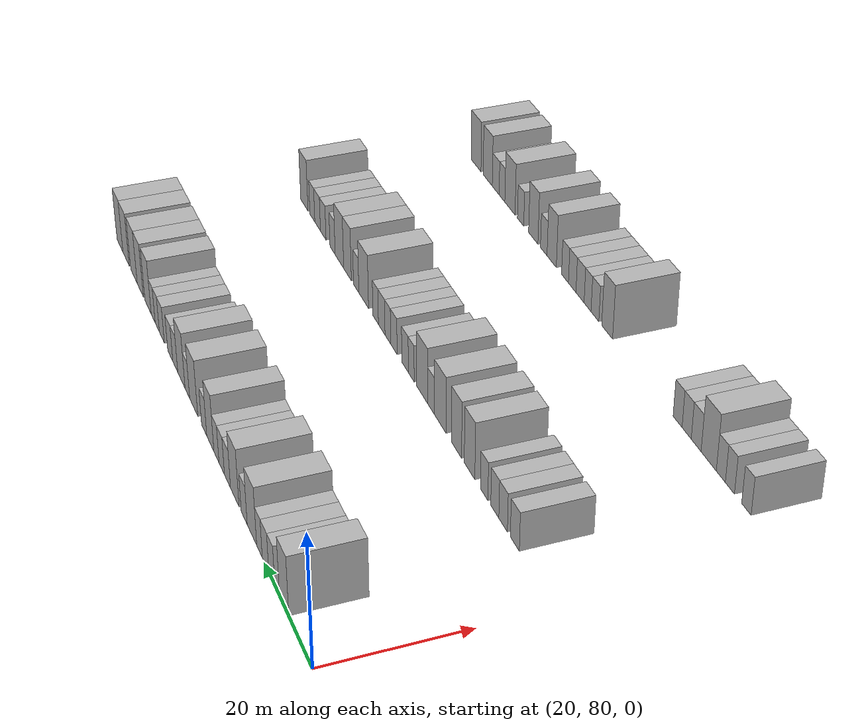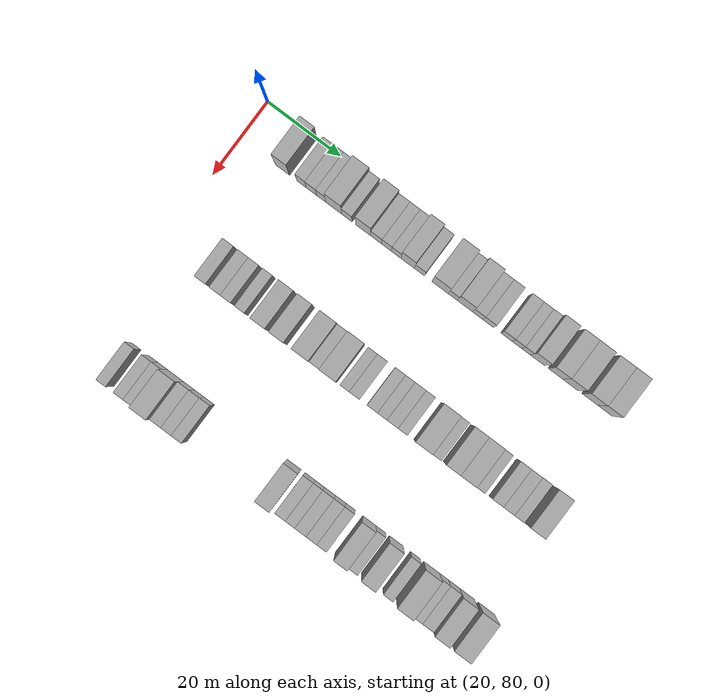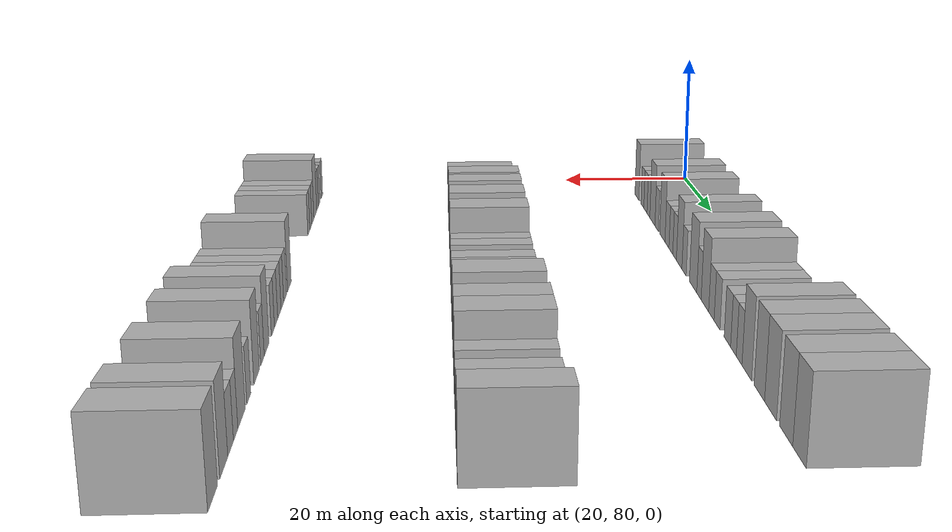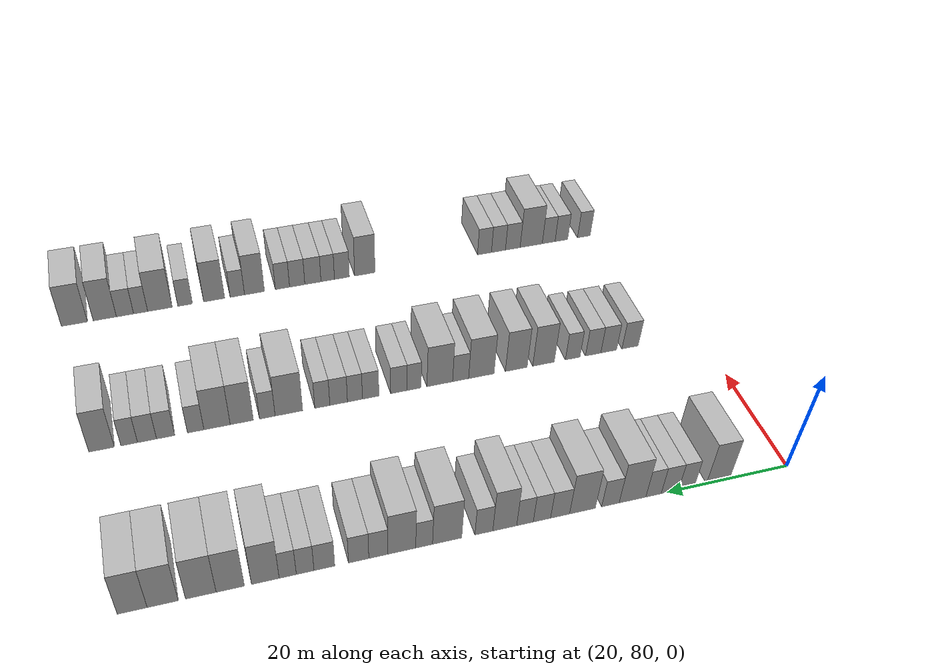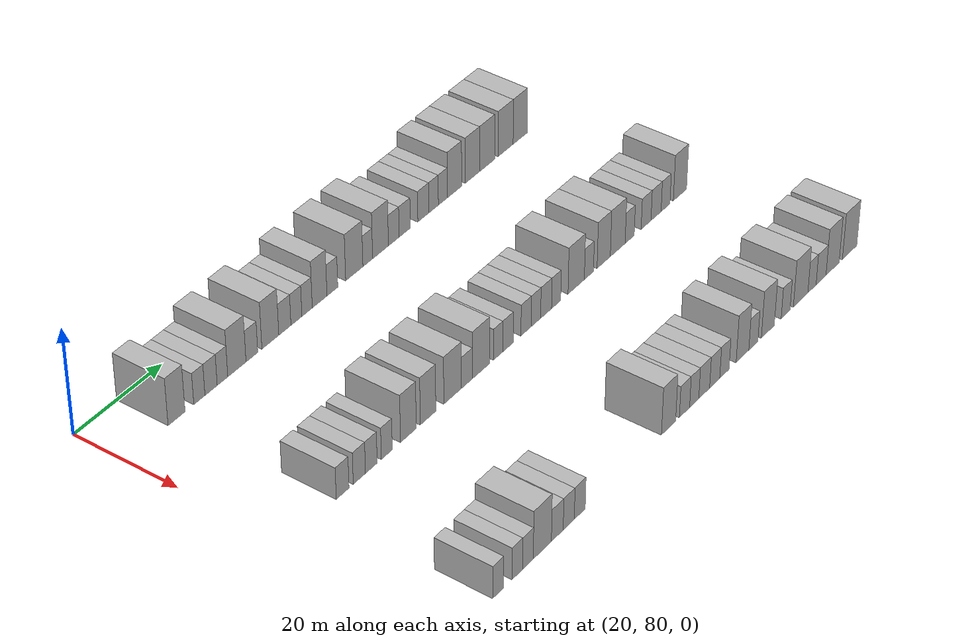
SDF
<sdf version="1.6">
 <world name="default">
  <model name="building_97">
   <static>1</static>
   <pose>25.0000 91.5908 0 0.000000 0.000000 0.000000</pose>
   <link name="link">
    <pose>0 0 4.50 0 0 0</pose>
    <collision name="collision"><geometry><box><size>10.0000 3.8743 9.0000</size></box></geometry></collision>
    <visual name="visual">
     <cast_shadows>0</cast_shadows>
     <geometry><box><size>10.0000 3.8743 9.0000</size></box></geometry>
     <material>
      <script>
       <uri>model://HANNAS_wall/materials/scripts</uri>
       <uri>model://HANNAS_wall/materials/textures</uri>
       <name>vrc/HANNAS_wall</name>
      </script>
     </material>
    </visual>
   </link>
  </model>
  <model name="building_98">
   <static>1</static>
   <pose>25.0000 96.8224 0 0.000000 0.000000 0.000000</pose>
   <link name="link">
    <pose>0 0 3.00 0 0 0</pose>
    <collision name="collision"><geometry><box><size>10.0000 2.5889 6.0000</size></box></geometry></collision>
    <visual name="visual">
     <cast_shadows>0</cast_shadows>
     <geometry><box><size>10.0000 2.5889 6.0000</size></box></geometry>
     <material>
      <script>
       <uri>model://HANNAS_wall/materials/scripts</uri>
       <uri>model://HANNAS_wall/materials/textures</uri>
       <name>vrc/HANNAS_wall</name>
      </script>
     </material>
    </visual>
   </link>
  </model>
  <model name="building_99">
   <static>1</static>
   <pose>25.0000 99.5422 0 0.000000 0.000000 0.000000</pose>
   <link name="link">
    <pose>0 0 3.00 0 0 0</pose>
    <collision name="collision"><geometry><box><size>10.0000 2.8506 6.0000</size></box></geometry></collision>
    <visual name="visual">
     <cast_shadows>0</cast_shadows>
     <geometry><box><size>10.0000 2.8506 6.0000</size></box></geometry>
     <material>
      <script>
       <uri>model://HANNAS_wall/materials/scripts</uri>
       <uri>model://HANNAS_wall/materials/textures</uri>
       <name>vrc/HANNAS_wall</name>
      </script>
     </material>
    </visual>
   </link>
  </model>
  <model name="building_100">
   <static>1</static>
   <pose>25.0000 102.2093 0 0.000000 0.000000 0.000000</pose>
   <link name="link">
    <pose>0 0 3.00 0 0 0</pose>
    <collision name="collision"><geometry><box><size>10.0000 2.4835 6.0000</size></box></geometry></collision>
    <visual name="visual">
     <cast_shadows>0</cast_shadows>
     <geometry><box><size>10.0000 2.4835 6.0000</size></box></geometry>
     <material>
      <script>
       <uri>model://HANNAS_wall/materials/scripts</uri>
       <uri>model://HANNAS_wall/materials/textures</uri>
       <name>vrc/HANNAS_wall</name>
      </script>
     </material>
    </visual>
   </link>
  </model>
  <model name="building_101">
   <static>1</static>
   <pose>25.0000 105.6084 0 0.000000 0.000000 0.000000</pose>
   <link name="link">
    <pose>0 0 4.50 0 0 0</pose>
    <collision name="collision"><geometry><box><size>10.0000 4.3146 9.0000</size></box></geometry></collision>
    <visual name="visual">
     <cast_shadows>0</cast_shadows>
     <geometry><box><size>10.0000 4.3146 9.0000</size></box></geometry>
     <material>
      <script>
       <uri>model://HANNAS_wall/materials/scripts</uri>
       <uri>model://HANNAS_wall/materials/textures</uri>
       <name>vrc/HANNAS_wall</name>
      </script>
     </material>
    </visual>
   </link>
  </model>
  <model name="building_102">
   <static>1</static>
   <pose>25.0000 109.1685 0 0.000000 0.000000 0.000000</pose>
   <link name="link">
    <pose>0 0 3.00 0 0 0</pose>
    <collision name="collision"><geometry><box><size>10.0000 2.8057 6.0000</size></box></geometry></collision>
    <visual name="visual">
     <cast_shadows>0</cast_shadows>
     <geometry><box><size>10.0000 2.8057 6.0000</size></box></geometry>
     <material>
      <script>
       <uri>model://HANNAS_wall/materials/scripts</uri>
       <uri>model://HANNAS_wall/materials/textures</uri>
       <name>vrc/HANNAS_wall</name>
      </script>
     </material>
    </visual>
   </link>
  </model>
  <model name="building_103">
   <static>1</static>
   <pose>25.0000 113.6145 0 0.000000 0.000000 0.000000</pose>
   <link name="link">
    <pose>0 0 4.50 0 0 0</pose>
    <collision name="collision"><geometry><box><size>10.0000 4.0864 9.0000</size></box></geometry></collision>
    <visual name="visual">
     <cast_shadows>0</cast_shadows>
     <geometry><box><size>10.0000 4.0864 9.0000</size></box></geometry>
     <material>
      <script>
       <uri>model://HANNAS_wall/materials/scripts</uri>
       <uri>model://HANNAS_wall/materials/textures</uri>
       <name>vrc/HANNAS_wall</name>
      </script>
     </material>
    </visual>
   </link>
  </model>
  <model name="building_104">
   <static>1</static>
   <pose>25.0000 117.1456 0 0.000000 0.000000 0.000000</pose>
   <link name="link">
    <pose>0 0 3.00 0 0 0</pose>
    <collision name="collision"><geometry><box><size>10.0000 2.9758 6.0000</size></box></geometry></collision>
    <visual name="visual">
     <cast_shadows>0</cast_shadows>
     <geometry><box><size>10.0000 2.9758 6.0000</size></box></geometry>
     <material>
      <script>
       <uri>model://HANNAS_wall/materials/scripts</uri>
       <uri>model://HANNAS_wall/materials/textures</uri>
       <name>vrc/HANNAS_wall</name>
      </script>
     </material>
    </visual>
   </link>
  </model>
  <model name="building_105">
   <static>1</static>
   <pose>25.0000 119.9803 0 0.000000 0.000000 0.000000</pose>
   <link name="link">
    <pose>0 0 3.00 0 0 0</pose>
    <collision name="collision"><geometry><box><size>10.0000 2.6935 6.0000</size></box></geometry></collision>
    <visual name="visual">
     <cast_shadows>0</cast_shadows>
     <geometry><box><size>10.0000 2.6935 6.0000</size></box></geometry>
     <material>
      <script>
       <uri>model://HANNAS_wall/materials/scripts</uri>
       <uri>model://HANNAS_wall/materials/textures</uri>
       <name>vrc/HANNAS_wall</name>
      </script>
     </material>
    </visual>
   </link>
  </model>
  <model name="building_106">
   <static>1</static>
   <pose>25.0000 122.6122 0 0.000000 0.000000 0.000000</pose>
   <link name="link">
    <pose>0 0 3.00 0 0 0</pose>
    <collision name="collision"><geometry><box><size>10.0000 2.5702 6.0000</size></box></geometry></collision>
    <visual name="visual">
     <cast_shadows>0</cast_shadows>
     <geometry><box><size>10.0000 2.5702 6.0000</size></box></geometry>
     <material>
      <script>
       <uri>model://HANNAS_wall/materials/scripts</uri>
       <uri>model://HANNAS_wall/materials/textures</uri>
       <name>vrc/HANNAS_wall</name>
      </script>
     </material>
    </visual>
   </link>
  </model>
  <model name="building_107">
   <static>1</static>
   <pose>25.0000 125.7366 0 0.000000 0.000000 0.000000</pose>
   <link name="link">
    <pose>0 0 4.50 0 0 0</pose>
    <collision name="collision"><geometry><box><size>10.0000 3.6786 9.0000</size></box></geometry></collision>
    <visual name="visual">
     <cast_shadows>0</cast_shadows>
     <geometry><box><size>10.0000 3.6786 9.0000</size></box></geometry>
     <material>
      <script>
       <uri>model://HANNAS_wall/materials/scripts</uri>
       <uri>model://HANNAS_wall/materials/textures</uri>
       <name>vrc/HANNAS_wall</name>
      </script>
     </material>
    </visual>
   </link>
  </model>
  <model name="building_108">
   <static>1</static>
   <pose>25.0000 128.9417 0 0.000000 0.000000 0.000000</pose>
   <link name="link">
    <pose>0 0 3.00 0 0 0</pose>
    <collision name="collision"><geometry><box><size>10.0000 2.7316 6.0000</size></box></geometry></collision>
    <visual name="visual">
     <cast_shadows>0</cast_shadows>
     <geometry><box><size>10.0000 2.7316 6.0000</size></box></geometry>
     <material>
      <script>
       <uri>model://HANNAS_wall/materials/scripts</uri>
       <uri>model://HANNAS_wall/materials/textures</uri>
       <name>vrc/HANNAS_wall</name>
      </script>
     </material>
    </visual>
   </link>
  </model>
  <model name="building_109">
   <static>1</static>
   <pose>25.0000 134.5075 0 0.000000 0.000000 0.000000</pose>
   <link name="link">
    <pose>0 0 4.50 0 0 0</pose>
    <collision name="collision"><geometry><box><size>10.0000 4.4000 9.0000</size></box></geometry></collision>
    <visual name="visual">
     <cast_shadows>0</cast_shadows>
     <geometry><box><size>10.0000 4.4000 9.0000</size></box></geometry>
     <material>
      <script>
       <uri>model://HANNAS_wall/materials/scripts</uri>
       <uri>model://HANNAS_wall/materials/textures</uri>
       <name>vrc/HANNAS_wall</name>
      </script>
     </material>
    </visual>
   </link>
  </model>
  <model name="building_110">
   <static>1</static>
   <pose>25.0000 137.9633 0 0.000000 0.000000 0.000000</pose>
   <link name="link">
    <pose>0 0 3.00 0 0 0</pose>
    <collision name="collision"><geometry><box><size>10.0000 2.5115 6.0000</size></box></geometry></collision>
    <visual name="visual">
     <cast_shadows>0</cast_shadows>
     <geometry><box><size>10.0000 2.5115 6.0000</size></box></geometry>
     <material>
      <script>
       <uri>model://HANNAS_wall/materials/scripts</uri>
       <uri>model://HANNAS_wall/materials/textures</uri>
       <name>vrc/HANNAS_wall</name>
      </script>
     </material>
    </visual>
   </link>
  </model>
  <model name="building_111">
   <static>1</static>
   <pose>25.0000 141.2764 0 0.000000 0.000000 0.000000</pose>
   <link name="link">
    <pose>0 0 4.50 0 0 0</pose>
    <collision name="collision"><geometry><box><size>10.0000 4.1148 9.0000</size></box></geometry></collision>
    <visual name="visual">
     <cast_shadows>0</cast_shadows>
     <geometry><box><size>10.0000 4.1148 9.0000</size></box></geometry>
     <material>
      <script>
       <uri>model://HANNAS_wall/materials/scripts</uri>
       <uri>model://HANNAS_wall/materials/textures</uri>
       <name>vrc/HANNAS_wall</name>
      </script>
     </material>
    </visual>
   </link>
  </model>
  <model name="building_112">
   <static>1</static>
   <pose>25.0000 144.7421 0 0.000000 0.000000 0.000000</pose>
   <link name="link">
    <pose>0 0 3.00 0 0 0</pose>
    <collision name="collision"><geometry><box><size>10.0000 2.8166 6.0000</size></box></geometry></collision>
    <visual name="visual">
     <cast_shadows>0</cast_shadows>
     <geometry><box><size>10.0000 2.8166 6.0000</size></box></geometry>
     <material>
      <script>
       <uri>model://HANNAS_wall/materials/scripts</uri>
       <uri>model://HANNAS_wall/materials/textures</uri>
       <name>vrc/HANNAS_wall</name>
      </script>
     </material>
    </visual>
   </link>
  </model>
  <model name="building_113">
   <static>1</static>
   <pose>25.0000 147.6312 0 0.000000 0.000000 0.000000</pose>
   <link name="link">
    <pose>0 0 3.00 0 0 0</pose>
    <collision name="collision"><geometry><box><size>10.0000 2.9615 6.0000</size></box></geometry></collision>
    <visual name="visual">
     <cast_shadows>0</cast_shadows>
     <geometry><box><size>10.0000 2.9615 6.0000</size></box></geometry>
     <material>
      <script>
       <uri>model://HANNAS_wall/materials/scripts</uri>
       <uri>model://HANNAS_wall/materials/textures</uri>
       <name>vrc/HANNAS_wall</name>
      </script>
     </material>
    </visual>
   </link>
  </model>
  <model name="building_114">
   <static>1</static>
   <pose>25.0000 152.6046 0 0.000000 0.000000 0.000000</pose>
   <link name="link">
    <pose>0 0 3.00 0 0 0</pose>
    <collision name="collision"><geometry><box><size>10.0000 2.9853 6.0000</size></box></geometry></collision>
    <visual name="visual">
     <cast_shadows>0</cast_shadows>
     <geometry><box><size>10.0000 2.9853 6.0000</size></box></geometry>
     <material>
      <script>
       <uri>model://HANNAS_wall/materials/scripts</uri>
       <uri>model://HANNAS_wall/materials/textures</uri>
       <name>vrc/HANNAS_wall</name>
      </script>
     </material>
    </visual>
   </link>
  </model>
  <model name="building_115">
   <static>1</static>
   <pose>25.0000 155.3676 0 0.000000 0.000000 0.000000</pose>
   <link name="link">
    <pose>0 0 3.00 0 0 0</pose>
    <collision name="collision"><geometry><box><size>10.0000 2.5406 6.0000</size></box></geometry></collision>
    <visual name="visual">
     <cast_shadows>0</cast_shadows>
     <geometry><box><size>10.0000 2.5406 6.0000</size></box></geometry>
     <material>
      <script>
       <uri>model://HANNAS_wall/materials/scripts</uri>
       <uri>model://HANNAS_wall/materials/textures</uri>
       <name>vrc/HANNAS_wall</name>
      </script>
     </material>
    </visual>
   </link>
  </model>
  <model name="building_116">
   <static>1</static>
   <pose>25.0000 157.8610 0 0.000000 0.000000 0.000000</pose>
   <link name="link">
    <pose>0 0 3.00 0 0 0</pose>
    <collision name="collision"><geometry><box><size>10.0000 2.4461 6.0000</size></box></geometry></collision>
    <visual name="visual">
     <cast_shadows>0</cast_shadows>
     <geometry><box><size>10.0000 2.4461 6.0000</size></box></geometry>
     <material>
      <script>
       <uri>model://HANNAS_wall/materials/scripts</uri>
       <uri>model://HANNAS_wall/materials/textures</uri>
       <name>vrc/HANNAS_wall</name>
      </script>
     </material>
    </visual>
   </link>
  </model>
  <model name="building_117">
   <static>1</static>
   <pose>25.0000 161.0375 0 0.000000 0.000000 0.000000</pose>
   <link name="link">
    <pose>0 0 4.50 0 0 0</pose>
    <collision name="collision"><geometry><box><size>10.0000 3.9070 9.0000</size></box></geometry></collision>
    <visual name="visual">
     <cast_shadows>0</cast_shadows>
     <geometry><box><size>10.0000 3.9070 9.0000</size></box></geometry>
     <material>
      <script>
       <uri>model://HANNAS_wall/materials/scripts</uri>
       <uri>model://HANNAS_wall/materials/textures</uri>
       <name>vrc/HANNAS_wall</name>
      </script>
     </material>
    </visual>
   </link>
  </model>
  <model name="building_118">
   <static>1</static>
   <pose>25.0000 165.9653 0 0.000000 0.000000 0.000000</pose>
   <link name="link">
    <pose>0 0 4.50 0 0 0</pose>
    <collision name="collision"><geometry><box><size>10.0000 3.9487 9.0000</size></box></geometry></collision>
    <visual name="visual">
     <cast_shadows>0</cast_shadows>
     <geometry><box><size>10.0000 3.9487 9.0000</size></box></geometry>
     <material>
      <script>
       <uri>model://HANNAS_wall/materials/scripts</uri>
       <uri>model://HANNAS_wall/materials/textures</uri>
       <name>vrc/HANNAS_wall</name>
      </script>
     </material>
    </visual>
   </link>
  </model>
  <model name="building_119">
   <static>1</static>
   <pose>25.0000 170.0561 0 0.000000 0.000000 0.000000</pose>
   <link name="link">
    <pose>0 0 4.50 0 0 0</pose>
    <collision name="collision"><geometry><box><size>10.0000 4.2329 9.0000</size></box></geometry></collision>
    <visual name="visual">
     <cast_shadows>0</cast_shadows>
     <geometry><box><size>10.0000 4.2329 9.0000</size></box></geometry>
     <material>
      <script>
       <uri>model://HANNAS_wall/materials/scripts</uri>
       <uri>model://HANNAS_wall/materials/textures</uri>
       <name>vrc/HANNAS_wall</name>
      </script>
     </material>
    </visual>
   </link>
  </model>
  <model name="building_120">
   <static>1</static>
   <pose>25.0000 175.2943 0 0.000000 0.000000 0.000000</pose>
   <link name="link">
    <pose>0 0 4.50 0 0 0</pose>
    <collision name="collision"><geometry><box><size>10.0000 4.2433 9.0000</size></box></geometry></collision>
    <visual name="visual">
     <cast_shadows>0</cast_shadows>
     <geometry><box><size>10.0000 4.2433 9.0000</size></box></geometry>
     <material>
      <script>
       <uri>model://HANNAS_wall/materials/scripts</uri>
       <uri>model://HANNAS_wall/materials/textures</uri>
       <name>vrc/HANNAS_wall</name>
      </script>
     </material>
    </visual>
   </link>
  </model>
  <model name="building_121">
   <static>1</static>
   <pose>25.0000 179.4380 0 0.000000 0.000000 0.000000</pose>
   <link name="link">
    <pose>0 0 4.50 0 0 0</pose>
    <collision name="collision"><geometry><box><size>10.0000 4.0442 9.0000</size></box></geometry></collision>
    <visual name="visual">
     <cast_shadows>0</cast_shadows>
     <geometry><box><size>10.0000 4.0442 9.0000</size></box></geometry>
     <material>
      <script>
       <uri>model://HANNAS_wall/materials/scripts</uri>
       <uri>model://HANNAS_wall/materials/textures</uri>
       <name>vrc/HANNAS_wall</name>
      </script>
     </material>
    </visual>
   </link>
  </model>
  <model name="building_236">
   <static>1</static>
   <pose>55.0000 92.8273 0 0.000000 0.000000 0.000000</pose>
   <link name="link">
    <pose>0 0 3.00 0 0 0</pose>
    <collision name="collision"><geometry><box><size>10.0000 2.9757 6.0000</size></box></geometry></collision>
    <visual name="visual">
     <cast_shadows>0</cast_shadows>
     <geometry><box><size>10.0000 2.9757 6.0000</size></box></geometry>
     <material>
      <script>
       <uri>model://HANNAS_wall/materials/scripts</uri>
       <uri>model://HANNAS_wall/materials/textures</uri>
       <name>vrc/HANNAS_wall</name>
      </script>
     </material>
    </visual>
   </link>
  </model>
  <model name="building_237">
   <static>1</static>
   <pose>55.0000 96.7581 0 0.000000 0.000000 0.000000</pose>
   <link name="link">
    <pose>0 0 3.00 0 0 0</pose>
    <collision name="collision"><geometry><box><size>10.0000 2.8860 6.0000</size></box></geometry></collision>
    <visual name="visual">
     <cast_shadows>0</cast_shadows>
     <geometry><box><size>10.0000 2.8860 6.0000</size></box></geometry>
     <material>
      <script>
       <uri>model://HANNAS_wall/materials/scripts</uri>
       <uri>model://HANNAS_wall/materials/textures</uri>
       <name>vrc/HANNAS_wall</name>
      </script>
     </material>
    </visual>
   </link>
  </model>
  <model name="building_238">
   <static>1</static>
   <pose>55.0000 99.5923 0 0.000000 0.000000 0.000000</pose>
   <link name="link">
    <pose>0 0 3.00 0 0 0</pose>
    <collision name="collision"><geometry><box><size>10.0000 2.7825 6.0000</size></box></geometry></collision>
    <visual name="visual">
     <cast_shadows>0</cast_shadows>
     <geometry><box><size>10.0000 2.7825 6.0000</size></box></geometry>
     <material>
      <script>
       <uri>model://HANNAS_wall/materials/scripts</uri>
       <uri>model://HANNAS_wall/materials/textures</uri>
       <name>vrc/HANNAS_wall</name>
      </script>
     </material>
    </visual>
   </link>
  </model>
  <model name="building_239">
   <static>1</static>
   <pose>55.0000 103.2998 0 0.000000 0.000000 0.000000</pose>
   <link name="link">
    <pose>0 0 3.00 0 0 0</pose>
    <collision name="collision"><geometry><box><size>10.0000 2.6325 6.0000</size></box></geometry></collision>
    <visual name="visual">
     <cast_shadows>0</cast_shadows>
     <geometry><box><size>10.0000 2.6325 6.0000</size></box></geometry>
     <material>
      <script>
       <uri>model://HANNAS_wall/materials/scripts</uri>
       <uri>model://HANNAS_wall/materials/textures</uri>
       <name>vrc/HANNAS_wall</name>
      </script>
     </material>
    </visual>
   </link>
  </model>
  <model name="building_240">
   <static>1</static>
   <pose>55.0000 108.5380 0 0.000000 0.000000 0.000000</pose>
   <link name="link">
    <pose>0 0 4.50 0 0 0</pose>
    <collision name="collision"><geometry><box><size>10.0000 3.8438 9.0000</size></box></geometry></collision>
    <visual name="visual">
     <cast_shadows>0</cast_shadows>
     <geometry><box><size>10.0000 3.8438 9.0000</size></box></geometry>
     <material>
      <script>
       <uri>model://HANNAS_wall/materials/scripts</uri>
       <uri>model://HANNAS_wall/materials/textures</uri>
       <name>vrc/HANNAS_wall</name>
      </script>
     </material>
    </visual>
   </link>
  </model>
  <model name="building_241">
   <static>1</static>
   <pose>55.0000 113.3839 0 0.000000 0.000000 0.000000</pose>
   <link name="link">
    <pose>0 0 4.50 0 0 0</pose>
    <collision name="collision"><geometry><box><size>10.0000 3.8479 9.0000</size></box></geometry></collision>
    <visual name="visual">
     <cast_shadows>0</cast_shadows>
     <geometry><box><size>10.0000 3.8479 9.0000</size></box></geometry>
     <material>
      <script>
       <uri>model://HANNAS_wall/materials/scripts</uri>
       <uri>model://HANNAS_wall/materials/textures</uri>
       <name>vrc/HANNAS_wall</name>
      </script>
     </material>
    </visual>
   </link>
  </model>
  <model name="building_242">
   <static>1</static>
   <pose>55.0000 119.5274 0 0.000000 0.000000 0.000000</pose>
   <link name="link">
    <pose>0 0 4.50 0 0 0</pose>
    <collision name="collision"><geometry><box><size>10.0000 4.4392 9.0000</size></box></geometry></collision>
    <visual name="visual">
     <cast_shadows>0</cast_shadows>
     <geometry><box><size>10.0000 4.4392 9.0000</size></box></geometry>
     <material>
      <script>
       <uri>model://HANNAS_wall/materials/scripts</uri>
       <uri>model://HANNAS_wall/materials/textures</uri>
       <name>vrc/HANNAS_wall</name>
      </script>
     </material>
    </visual>
   </link>
  </model>
  <model name="building_243">
   <static>1</static>
   <pose>55.0000 123.1361 0 0.000000 0.000000 0.000000</pose>
   <link name="link">
    <pose>0 0 3.00 0 0 0</pose>
    <collision name="collision"><geometry><box><size>10.0000 2.7781 6.0000</size></box></geometry></collision>
    <visual name="visual">
     <cast_shadows>0</cast_shadows>
     <geometry><box><size>10.0000 2.7781 6.0000</size></box></geometry>
     <material>
      <script>
       <uri>model://HANNAS_wall/materials/scripts</uri>
       <uri>model://HANNAS_wall/materials/textures</uri>
       <name>vrc/HANNAS_wall</name>
      </script>
     </material>
    </visual>
   </link>
  </model>
  <model name="building_244">
   <static>1</static>
   <pose>55.0000 126.7405 0 0.000000 0.000000 0.000000</pose>
   <link name="link">
    <pose>0 0 4.50 0 0 0</pose>
    <collision name="collision"><geometry><box><size>10.0000 4.4308 9.0000</size></box></geometry></collision>
    <visual name="visual">
     <cast_shadows>0</cast_shadows>
     <geometry><box><size>10.0000 4.4308 9.0000</size></box></geometry>
     <material>
      <script>
       <uri>model://HANNAS_wall/materials/scripts</uri>
       <uri>model://HANNAS_wall/materials/textures</uri>
       <name>vrc/HANNAS_wall</name>
      </script>
     </material>
    </visual>
   </link>
  </model>
  <model name="building_245">
   <static>1</static>
   <pose>55.0000 131.1613 0 0.000000 0.000000 0.000000</pose>
   <link name="link">
    <pose>0 0 3.00 0 0 0</pose>
    <collision name="collision"><geometry><box><size>10.0000 2.4109 6.0000</size></box></geometry></collision>
    <visual name="visual">
     <cast_shadows>0</cast_shadows>
     <geometry><box><size>10.0000 2.4109 6.0000</size></box></geometry>
     <material>
      <script>
       <uri>model://HANNAS_wall/materials/scripts</uri>
       <uri>model://HANNAS_wall/materials/textures</uri>
       <name>vrc/HANNAS_wall</name>
      </script>
     </material>
    </visual>
   </link>
  </model>
  <model name="building_246">
   <static>1</static>
   <pose>55.0000 133.7448 0 0.000000 0.000000 0.000000</pose>
   <link name="link">
    <pose>0 0 3.00 0 0 0</pose>
    <collision name="collision"><geometry><box><size>10.0000 2.7561 6.0000</size></box></geometry></collision>
    <visual name="visual">
     <cast_shadows>0</cast_shadows>
     <geometry><box><size>10.0000 2.7561 6.0000</size></box></geometry>
     <material>
      <script>
       <uri>model://HANNAS_wall/materials/scripts</uri>
       <uri>model://HANNAS_wall/materials/textures</uri>
       <name>vrc/HANNAS_wall</name>
      </script>
     </material>
    </visual>
   </link>
  </model>
  <model name="building_247">
   <static>1</static>
   <pose>55.0000 138.5010 0 0.000000 0.000000 0.000000</pose>
   <link name="link">
    <pose>0 0 3.00 0 0 0</pose>
    <collision name="collision"><geometry><box><size>10.0000 2.7562 6.0000</size></box></geometry></collision>
    <visual name="visual">
     <cast_shadows>0</cast_shadows>
     <geometry><box><size>10.0000 2.7562 6.0000</size></box></geometry>
     <material>
      <script>
       <uri>model://HANNAS_wall/materials/scripts</uri>
       <uri>model://HANNAS_wall/materials/textures</uri>
       <name>vrc/HANNAS_wall</name>
      </script>
     </material>
    </visual>
   </link>
  </model>
  <model name="building_248">
   <static>1</static>
   <pose>55.0000 141.1300 0 0.000000 0.000000 0.000000</pose>
   <link name="link">
    <pose>0 0 3.00 0 0 0</pose>
    <collision name="collision"><geometry><box><size>10.0000 2.5018 6.0000</size></box></geometry></collision>
    <visual name="visual">
     <cast_shadows>0</cast_shadows>
     <geometry><box><size>10.0000 2.5018 6.0000</size></box></geometry>
     <material>
      <script>
       <uri>model://HANNAS_wall/materials/scripts</uri>
       <uri>model://HANNAS_wall/materials/textures</uri>
       <name>vrc/HANNAS_wall</name>
      </script>
     </material>
    </visual>
   </link>
  </model>
  <model name="building_249">
   <static>1</static>
   <pose>55.0000 143.8429 0 0.000000 0.000000 0.000000</pose>
   <link name="link">
    <pose>0 0 3.00 0 0 0</pose>
    <collision name="collision"><geometry><box><size>10.0000 2.9241 6.0000</size></box></geometry></collision>
    <visual name="visual">
     <cast_shadows>0</cast_shadows>
     <geometry><box><size>10.0000 2.9241 6.0000</size></box></geometry>
     <material>
      <script>
       <uri>model://HANNAS_wall/materials/scripts</uri>
       <uri>model://HANNAS_wall/materials/textures</uri>
       <name>vrc/HANNAS_wall</name>
      </script>
     </material>
    </visual>
   </link>
  </model>
  <model name="building_250">
   <static>1</static>
   <pose>55.0000 146.5451 0 0.000000 0.000000 0.000000</pose>
   <link name="link">
    <pose>0 0 3.00 0 0 0</pose>
    <collision name="collision"><geometry><box><size>10.0000 2.4803 6.0000</size></box></geometry></collision>
    <visual name="visual">
     <cast_shadows>0</cast_shadows>
     <geometry><box><size>10.0000 2.4803 6.0000</size></box></geometry>
     <material>
      <script>
       <uri>model://HANNAS_wall/materials/scripts</uri>
       <uri>model://HANNAS_wall/materials/textures</uri>
       <name>vrc/HANNAS_wall</name>
      </script>
     </material>
    </visual>
   </link>
  </model>
  <model name="building_251">
   <static>1</static>
   <pose>55.0000 152.0290 0 0.000000 0.000000 0.000000</pose>
   <link name="link">
    <pose>0 0 4.50 0 0 0</pose>
    <collision name="collision"><geometry><box><size>10.0000 4.4875 9.0000</size></box></geometry></collision>
    <visual name="visual">
     <cast_shadows>0</cast_shadows>
     <geometry><box><size>10.0000 4.4875 9.0000</size></box></geometry>
     <material>
      <script>
       <uri>model://HANNAS_wall/materials/scripts</uri>
       <uri>model://HANNAS_wall/materials/textures</uri>
       <name>vrc/HANNAS_wall</name>
      </script>
     </material>
    </visual>
   </link>
  </model>
  <model name="building_252">
   <static>1</static>
   <pose>55.0000 155.5372 0 0.000000 0.000000 0.000000</pose>
   <link name="link">
    <pose>0 0 3.00 0 0 0</pose>
    <collision name="collision"><geometry><box><size>10.0000 2.5289 6.0000</size></box></geometry></collision>
    <visual name="visual">
     <cast_shadows>0</cast_shadows>
     <geometry><box><size>10.0000 2.5289 6.0000</size></box></geometry>
     <material>
      <script>
       <uri>model://HANNAS_wall/materials/scripts</uri>
       <uri>model://HANNAS_wall/materials/textures</uri>
       <name>vrc/HANNAS_wall</name>
      </script>
     </material>
    </visual>
   </link>
  </model>
  <model name="building_253">
   <static>1</static>
   <pose>55.0000 159.6601 0 0.000000 0.000000 0.000000</pose>
   <link name="link">
    <pose>0 0 4.50 0 0 0</pose>
    <collision name="collision"><geometry><box><size>10.0000 3.7169 9.0000</size></box></geometry></collision>
    <visual name="visual">
     <cast_shadows>0</cast_shadows>
     <geometry><box><size>10.0000 3.7169 9.0000</size></box></geometry>
     <material>
      <script>
       <uri>model://HANNAS_wall/materials/scripts</uri>
       <uri>model://HANNAS_wall/materials/textures</uri>
       <name>vrc/HANNAS_wall</name>
      </script>
     </material>
    </visual>
   </link>
  </model>
  <model name="building_254">
   <static>1</static>
   <pose>55.0000 163.6194 0 0.000000 0.000000 0.000000</pose>
   <link name="link">
    <pose>0 0 4.50 0 0 0</pose>
    <collision name="collision"><geometry><box><size>10.0000 4.2017 9.0000</size></box></geometry></collision>
    <visual name="visual">
     <cast_shadows>0</cast_shadows>
     <geometry><box><size>10.0000 4.2017 9.0000</size></box></geometry>
     <material>
      <script>
       <uri>model://HANNAS_wall/materials/scripts</uri>
       <uri>model://HANNAS_wall/materials/textures</uri>
       <name>vrc/HANNAS_wall</name>
      </script>
     </material>
    </visual>
   </link>
  </model>
  <model name="building_255">
   <static>1</static>
   <pose>55.0000 167.0173 0 0.000000 0.000000 0.000000</pose>
   <link name="link">
    <pose>0 0 3.00 0 0 0</pose>
    <collision name="collision"><geometry><box><size>10.0000 2.5940 6.0000</size></box></geometry></collision>
    <visual name="visual">
     <cast_shadows>0</cast_shadows>
     <geometry><box><size>10.0000 2.5940 6.0000</size></box></geometry>
     <material>
      <script>
       <uri>model://HANNAS_wall/materials/scripts</uri>
       <uri>model://HANNAS_wall/materials/textures</uri>
       <name>vrc/HANNAS_wall</name>
      </script>
     </material>
    </visual>
   </link>
  </model>
  <model name="building_256">
   <static>1</static>
   <pose>55.0000 171.7428 0 0.000000 0.000000 0.000000</pose>
   <link name="link">
    <pose>0 0 3.00 0 0 0</pose>
    <collision name="collision"><geometry><box><size>10.0000 2.8570 6.0000</size></box></geometry></collision>
    <visual name="visual">
     <cast_shadows>0</cast_shadows>
     <geometry><box><size>10.0000 2.8570 6.0000</size></box></geometry>
     <material>
      <script>
       <uri>model://HANNAS_wall/materials/scripts</uri>
       <uri>model://HANNAS_wall/materials/textures</uri>
       <name>vrc/HANNAS_wall</name>
      </script>
     </material>
    </visual>
   </link>
  </model>
  <model name="building_257">
   <static>1</static>
   <pose>55.0000 174.6405 0 0.000000 0.000000 0.000000</pose>
   <link name="link">
    <pose>0 0 3.00 0 0 0</pose>
    <collision name="collision"><geometry><box><size>10.0000 2.9385 6.0000</size></box></geometry></collision>
    <visual name="visual">
     <cast_shadows>0</cast_shadows>
     <geometry><box><size>10.0000 2.9385 6.0000</size></box></geometry>
     <material>
      <script>
       <uri>model://HANNAS_wall/materials/scripts</uri>
       <uri>model://HANNAS_wall/materials/textures</uri>
       <name>vrc/HANNAS_wall</name>
      </script>
     </material>
    </visual>
   </link>
  </model>
  <model name="building_258">
   <static>1</static>
   <pose>55.0000 177.4065 0 0.000000 0.000000 0.000000</pose>
   <link name="link">
    <pose>0 0 3.00 0 0 0</pose>
    <collision name="collision"><geometry><box><size>10.0000 2.5935 6.0000</size></box></geometry></collision>
    <visual name="visual">
     <cast_shadows>0</cast_shadows>
     <geometry><box><size>10.0000 2.5935 6.0000</size></box></geometry>
     <material>
      <script>
       <uri>model://HANNAS_wall/materials/scripts</uri>
       <uri>model://HANNAS_wall/materials/textures</uri>
       <name>vrc/HANNAS_wall</name>
      </script>
     </material>
    </visual>
   </link>
  </model>
  <model name="building_259">
   <static>1</static>
   <pose>55.0000 181.6558 0 0.000000 0.000000 0.000000</pose>
   <link name="link">
    <pose>0 0 4.50 0 0 0</pose>
    <collision name="collision"><geometry><box><size>10.0000 3.9051 9.0000</size></box></geometry></collision>
    <visual name="visual">
     <cast_shadows>0</cast_shadows>
     <geometry><box><size>10.0000 3.9051 9.0000</size></box></geometry>
     <material>
      <script>
       <uri>model://HANNAS_wall/materials/scripts</uri>
       <uri>model://HANNAS_wall/materials/textures</uri>
       <name>vrc/HANNAS_wall</name>
      </script>
     </material>
    </visual>
   </link>
  </model>
  <model name="building_377">
   <static>1</static>
   <pose>85.0000 89.1709 0 0.000000 0.000000 0.000000</pose>
   <link name="link">
    <pose>0 0 3.00 0 0 0</pose>
    <collision name="collision"><geometry><box><size>10.0000 2.5840 6.0000</size></box></geometry></collision>
    <visual name="visual">
     <cast_shadows>0</cast_shadows>
     <geometry><box><size>10.0000 2.5840 6.0000</size></box></geometry>
     <material>
      <script>
       <uri>model://HANNAS_wall/materials/scripts</uri>
       <uri>model://HANNAS_wall/materials/textures</uri>
       <name>vrc/HANNAS_wall</name>
      </script>
     </material>
    </visual>
   </link>
  </model>
  <model name="building_378">
   <static>1</static>
   <pose>85.0000 93.7432 0 0.000000 0.000000 0.000000</pose>
   <link name="link">
    <pose>0 0 3.00 0 0 0</pose>
    <collision name="collision"><geometry><box><size>10.0000 2.5607 6.0000</size></box></geometry></collision>
    <visual name="visual">
     <cast_shadows>0</cast_shadows>
     <geometry><box><size>10.0000 2.5607 6.0000</size></box></geometry>
     <material>
      <script>
       <uri>model://HANNAS_wall/materials/scripts</uri>
       <uri>model://HANNAS_wall/materials/textures</uri>
       <name>vrc/HANNAS_wall</name>
      </script>
     </material>
    </visual>
   </link>
  </model>
  <model name="building_379">
   <static>1</static>
   <pose>85.0000 96.3140 0 0.000000 0.000000 0.000000</pose>
   <link name="link">
    <pose>0 0 3.00 0 0 0</pose>
    <collision name="collision"><geometry><box><size>10.0000 2.5809 6.0000</size></box></geometry></collision>
    <visual name="visual">
     <cast_shadows>0</cast_shadows>
     <geometry><box><size>10.0000 2.5809 6.0000</size></box></geometry>
     <material>
      <script>
       <uri>model://HANNAS_wall/materials/scripts</uri>
       <uri>model://HANNAS_wall/materials/textures</uri>
       <name>vrc/HANNAS_wall</name>
      </script>
     </material>
    </visual>
   </link>
  </model>
  <model name="building_380">
   <static>1</static>
   <pose>85.0000 99.8230 0 0.000000 0.000000 0.000000</pose>
   <link name="link">
    <pose>0 0 4.50 0 0 0</pose>
    <collision name="collision"><geometry><box><size>10.0000 4.4370 9.0000</size></box></geometry></collision>
    <visual name="visual">
     <cast_shadows>0</cast_shadows>
     <geometry><box><size>10.0000 4.4370 9.0000</size></box></geometry>
     <material>
      <script>
       <uri>model://HANNAS_wall/materials/scripts</uri>
       <uri>model://HANNAS_wall/materials/textures</uri>
       <name>vrc/HANNAS_wall</name>
      </script>
     </material>
    </visual>
   </link>
  </model>
  <model name="building_381">
   <static>1</static>
   <pose>85.0000 103.5042 0 0.000000 0.000000 0.000000</pose>
   <link name="link">
    <pose>0 0 3.00 0 0 0</pose>
    <collision name="collision"><geometry><box><size>10.0000 2.9254 6.0000</size></box></geometry></collision>
    <visual name="visual">
     <cast_shadows>0</cast_shadows>
     <geometry><box><size>10.0000 2.9254 6.0000</size></box></geometry>
     <material>
      <script>
       <uri>model://HANNAS_wall/materials/scripts</uri>
       <uri>model://HANNAS_wall/materials/textures</uri>
       <name>vrc/HANNAS_wall</name>
      </script>
     </material>
    </visual>
   </link>
  </model>
  <model name="building_382">
   <static>1</static>
   <pose>85.0000 106.3530 0 0.000000 0.000000 0.000000</pose>
   <link name="link">
    <pose>0 0 3.00 0 0 0</pose>
    <collision name="collision"><geometry><box><size>10.0000 2.7722 6.0000</size></box></geometry></collision>
    <visual name="visual">
     <cast_shadows>0</cast_shadows>
     <geometry><box><size>10.0000 2.7722 6.0000</size></box></geometry>
     <material>
      <script>
       <uri>model://HANNAS_wall/materials/scripts</uri>
       <uri>model://HANNAS_wall/materials/textures</uri>
       <name>vrc/HANNAS_wall</name>
      </script>
     </material>
    </visual>
   </link>
  </model>
  <model name="building_383">
   <static>1</static>
   <pose>85.0000 109.1144 0 0.000000 0.000000 0.000000</pose>
   <link name="link">
    <pose>0 0 3.00 0 0 0</pose>
    <collision name="collision"><geometry><box><size>10.0000 2.7508 6.0000</size></box></geometry></collision>
    <visual name="visual">
     <cast_shadows>0</cast_shadows>
     <geometry><box><size>10.0000 2.7508 6.0000</size></box></geometry>
     <material>
      <script>
       <uri>model://HANNAS_wall/materials/scripts</uri>
       <uri>model://HANNAS_wall/materials/textures</uri>
       <name>vrc/HANNAS_wall</name>
      </script>
     </material>
    </visual>
   </link>
  </model>
  <model name="building_384">
   <static>1</static>
   <pose>85.0000 132.2220 0 0.000000 0.000000 0.000000</pose>
   <link name="link">
    <pose>0 0 4.50 0 0 0</pose>
    <collision name="collision"><geometry><box><size>10.0000 3.8215 9.0000</size></box></geometry></collision>
    <visual name="visual">
     <cast_shadows>0</cast_shadows>
     <geometry><box><size>10.0000 3.8215 9.0000</size></box></geometry>
     <material>
      <script>
       <uri>model://HANNAS_wall/materials/scripts</uri>
       <uri>model://HANNAS_wall/materials/textures</uri>
       <name>vrc/HANNAS_wall</name>
      </script>
     </material>
    </visual>
   </link>
  </model>
  <model name="building_385">
   <static>1</static>
   <pose>85.0000 136.5280 0 0.000000 0.000000 0.000000</pose>
   <link name="link">
    <pose>0 0 3.00 0 0 0</pose>
    <collision name="collision"><geometry><box><size>10.0000 2.7906 6.0000</size></box></geometry></collision>
    <visual name="visual">
     <cast_shadows>0</cast_shadows>
     <geometry><box><size>10.0000 2.7906 6.0000</size></box></geometry>
     <material>
      <script>
       <uri>model://HANNAS_wall/materials/scripts</uri>
       <uri>model://HANNAS_wall/materials/textures</uri>
       <name>vrc/HANNAS_wall</name>
      </script>
     </material>
    </visual>
   </link>
  </model>
  <model name="building_386">
   <static>1</static>
   <pose>85.0000 139.1819 0 0.000000 0.000000 0.000000</pose>
   <link name="link">
    <pose>0 0 3.00 0 0 0</pose>
    <collision name="collision"><geometry><box><size>10.0000 2.5171 6.0000</size></box></geometry></collision>
    <visual name="visual">
     <cast_shadows>0</cast_shadows>
     <geometry><box><size>10.0000 2.5171 6.0000</size></box></geometry>
     <material>
      <script>
       <uri>model://HANNAS_wall/materials/scripts</uri>
       <uri>model://HANNAS_wall/materials/textures</uri>
       <name>vrc/HANNAS_wall</name>
      </script>
     </material>
    </visual>
   </link>
  </model>
  <model name="building_387">
   <static>1</static>
   <pose>85.0000 141.9348 0 0.000000 0.000000 0.000000</pose>
   <link name="link">
    <pose>0 0 3.00 0 0 0</pose>
    <collision name="collision"><geometry><box><size>10.0000 2.9887 6.0000</size></box></geometry></collision>
    <visual name="visual">
     <cast_shadows>0</cast_shadows>
     <geometry><box><size>10.0000 2.9887 6.0000</size></box></geometry>
     <material>
      <script>
       <uri>model://HANNAS_wall/materials/scripts</uri>
       <uri>model://HANNAS_wall/materials/textures</uri>
       <name>vrc/HANNAS_wall</name>
      </script>
     </material>
    </visual>
   </link>
  </model>
  <model name="building_388">
   <static>1</static>
   <pose>85.0000 144.8382 0 0.000000 0.000000 0.000000</pose>
   <link name="link">
    <pose>0 0 3.00 0 0 0</pose>
    <collision name="collision"><geometry><box><size>10.0000 2.8182 6.0000</size></box></geometry></collision>
    <visual name="visual">
     <cast_shadows>0</cast_shadows>
     <geometry><box><size>10.0000 2.8182 6.0000</size></box></geometry>
     <material>
      <script>
       <uri>model://HANNAS_wall/materials/scripts</uri>
       <uri>model://HANNAS_wall/materials/textures</uri>
       <name>vrc/HANNAS_wall</name>
      </script>
     </material>
    </visual>
   </link>
  </model>
  <model name="building_389">
   <static>1</static>
   <pose>85.0000 147.5519 0 0.000000 0.000000 0.000000</pose>
   <link name="link">
    <pose>0 0 3.00 0 0 0</pose>
    <collision name="collision"><geometry><box><size>10.0000 2.6092 6.0000</size></box></geometry></collision>
    <visual name="visual">
     <cast_shadows>0</cast_shadows>
     <geometry><box><size>10.0000 2.6092 6.0000</size></box></geometry>
     <material>
      <script>
       <uri>model://HANNAS_wall/materials/scripts</uri>
       <uri>model://HANNAS_wall/materials/textures</uri>
       <name>vrc/HANNAS_wall</name>
      </script>
     </material>
    </visual>
   </link>
  </model>
  <model name="building_390">
   <static>1</static>
   <pose>85.0000 152.6637 0 0.000000 0.000000 0.000000</pose>
   <link name="link">
    <pose>0 0 4.50 0 0 0</pose>
    <collision name="collision"><geometry><box><size>10.0000 3.6144 9.0000</size></box></geometry></collision>
    <visual name="visual">
     <cast_shadows>0</cast_shadows>
     <geometry><box><size>10.0000 3.6144 9.0000</size></box></geometry>
     <material>
      <script>
       <uri>model://HANNAS_wall/materials/scripts</uri>
       <uri>model://HANNAS_wall/materials/textures</uri>
       <name>vrc/HANNAS_wall</name>
      </script>
     </material>
    </visual>
   </link>
  </model>
  <model name="building_391">
   <static>1</static>
   <pose>85.0000 155.7697 0 0.000000 0.000000 0.000000</pose>
   <link name="link">
    <pose>0 0 3.00 0 0 0</pose>
    <collision name="collision"><geometry><box><size>10.0000 2.5974 6.0000</size></box></geometry></collision>
    <visual name="visual">
     <cast_shadows>0</cast_shadows>
     <geometry><box><size>10.0000 2.5974 6.0000</size></box></geometry>
     <material>
      <script>
       <uri>model://HANNAS_wall/materials/scripts</uri>
       <uri>model://HANNAS_wall/materials/textures</uri>
       <name>vrc/HANNAS_wall</name>
      </script>
     </material>
    </visual>
   </link>
  </model>
  <model name="building_392">
   <static>1</static>
   <pose>85.0000 159.9510 0 0.000000 0.000000 0.000000</pose>
   <link name="link">
    <pose>0 0 4.50 0 0 0</pose>
    <collision name="collision"><geometry><box><size>10.0000 3.7651 9.0000</size></box></geometry></collision>
    <visual name="visual">
     <cast_shadows>0</cast_shadows>
     <geometry><box><size>10.0000 3.7651 9.0000</size></box></geometry>
     <material>
      <script>
       <uri>model://HANNAS_wall/materials/scripts</uri>
       <uri>model://HANNAS_wall/materials/textures</uri>
       <name>vrc/HANNAS_wall</name>
      </script>
     </material>
    </visual>
   </link>
  </model>
  <model name="building_393">
   <static>1</static>
   <pose>85.0000 165.1326 0 0.000000 0.000000 0.000000</pose>
   <link name="link">
    <pose>0 0 3.00 0 0 0</pose>
    <collision name="collision"><geometry><box><size>10.0000 2.5981 6.0000</size></box></geometry></collision>
    <visual name="visual">
     <cast_shadows>0</cast_shadows>
     <geometry><box><size>10.0000 2.5981 6.0000</size></box></geometry>
     <material>
      <script>
       <uri>model://HANNAS_wall/materials/scripts</uri>
       <uri>model://HANNAS_wall/materials/textures</uri>
       <name>vrc/HANNAS_wall</name>
      </script>
     </material>
    </visual>
   </link>
  </model>
  <model name="building_394">
   <static>1</static>
   <pose>85.0000 169.5886 0 0.000000 0.000000 0.000000</pose>
   <link name="link">
    <pose>0 0 4.50 0 0 0</pose>
    <collision name="collision"><geometry><box><size>10.0000 4.3139 9.0000</size></box></geometry></collision>
    <visual name="visual">
     <cast_shadows>0</cast_shadows>
     <geometry><box><size>10.0000 4.3139 9.0000</size></box></geometry>
     <material>
      <script>
       <uri>model://HANNAS_wall/materials/scripts</uri>
       <uri>model://HANNAS_wall/materials/textures</uri>
       <name>vrc/HANNAS_wall</name>
      </script>
     </material>
    </visual>
   </link>
  </model>
  <model name="building_395">
   <static>1</static>
   <pose>85.0000 172.9747 0 0.000000 0.000000 0.000000</pose>
   <link name="link">
    <pose>0 0 3.00 0 0 0</pose>
    <collision name="collision"><geometry><box><size>10.0000 2.4585 6.0000</size></box></geometry></collision>
    <visual name="visual">
     <cast_shadows>0</cast_shadows>
     <geometry><box><size>10.0000 2.4585 6.0000</size></box></geometry>
     <material>
      <script>
       <uri>model://HANNAS_wall/materials/scripts</uri>
       <uri>model://HANNAS_wall/materials/textures</uri>
       <name>vrc/HANNAS_wall</name>
      </script>
     </material>
    </visual>
   </link>
  </model>
  <model name="building_396">
   <static>1</static>
   <pose>85.0000 175.7014 0 0.000000 0.000000 0.000000</pose>
   <link name="link">
    <pose>0 0 3.00 0 0 0</pose>
    <collision name="collision"><geometry><box><size>10.0000 2.9949 6.0000</size></box></geometry></collision>
    <visual name="visual">
     <cast_shadows>0</cast_shadows>
     <geometry><box><size>10.0000 2.9949 6.0000</size></box></geometry>
     <material>
      <script>
       <uri>model://HANNAS_wall/materials/scripts</uri>
       <uri>model://HANNAS_wall/materials/textures</uri>
       <name>vrc/HANNAS_wall</name>
      </script>
     </material>
    </visual>
   </link>
  </model>
  <model name="building_397">
   <static>1</static>
   <pose>85.0000 179.2054 0 0.000000 0.000000 0.000000</pose>
   <link name="link">
    <pose>0 0 4.50 0 0 0</pose>
    <collision name="collision"><geometry><box><size>10.0000 4.0130 9.0000</size></box></geometry></collision>
    <visual name="visual">
     <cast_shadows>0</cast_shadows>
     <geometry><box><size>10.0000 4.0130 9.0000</size></box></geometry>
     <material>
      <script>
       <uri>model://HANNAS_wall/materials/scripts</uri>
       <uri>model://HANNAS_wall/materials/textures</uri>
       <name>vrc/HANNAS_wall</name>
      </script>
     </material>
    </visual>
   </link>
  </model>
  <model name="building_398">
   <static>1</static>
   <pose>85.0000 184.4410 0 0.000000 0.000000 0.000000</pose>
   <link name="link">
    <pose>0 0 4.50 0 0 0</pose>
    <collision name="collision"><geometry><box><size>10.0000 4.4581 9.0000</size></box></geometry></collision>
    <visual name="visual">
     <cast_shadows>0</cast_shadows>
     <geometry><box><size>10.0000 4.4581 9.0000</size></box></geometry>
     <material>
      <script>
       <uri>model://HANNAS_wall/materials/scripts</uri>
       <uri>model://HANNAS_wall/materials/textures</uri>
       <name>vrc/HANNAS_wall</name>
      </script>
     </material>
    </visual>
   </link>
  </model>
 </world>
</sdf>
